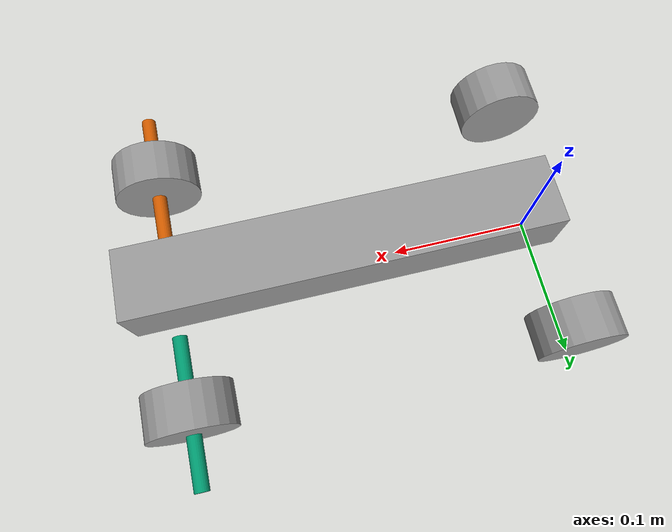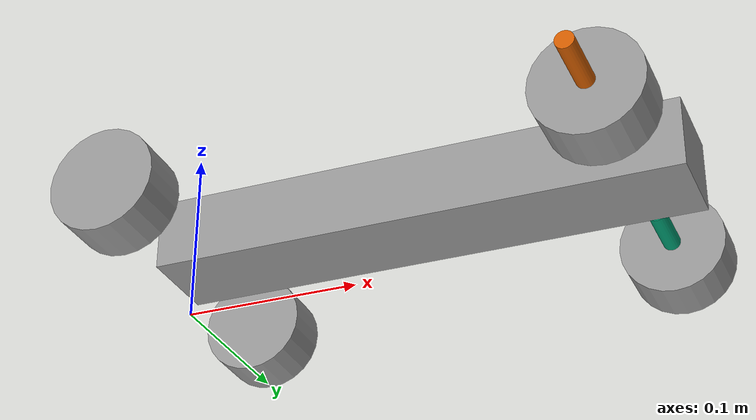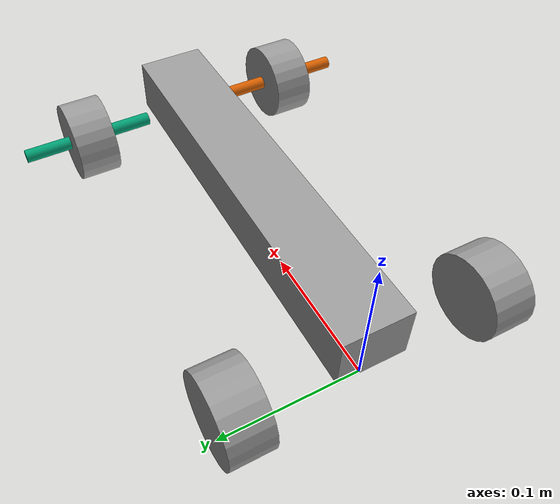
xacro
<?xml version='1.0'?>

<robot name="simcar" xmlns:xacro="http://www.ros.org/wiki/xacro">

    <!-- include vehicle properties -->
    <xacro:include filename="$(find picar_description)/urdf/properties.xacro" />

<!-- Chassis -->
    <link name="chassis">
        <inertial>
            <mass value="${chassisMass}"/>
            <xacro:insert_block name="chassisCenter"/>
            <inertia ixx="${chassisInertiaX}"   ixy="0.0"                   ixz="0.0"
                                                iyy="${chassisInertiaY}"    iyz="0.0"
                                                                            izz="${chassisInertiaZ}"/>
        </inertial>

        <visual>
            <xacro:insert_block name="chassisCenter"/>
            <geometry>
                <box size="${chassisLength} ${chassisWidth} ${chassisHeight}"/>
            </geometry>
        </visual>

        <collision>
            <xacro:insert_block name="chassisCenter"/>
            <geometry>
                <box size="${chassisLength} ${chassisWidth} ${chassisHeight}"/>
            </geometry>
        </collision>
    </link>

    <gazebo reference="chassis">
        <material>Gazebo/Grey</material>
    </gazebo>

<!-- Wheel side macro because of symmetry
    side: {left, right}-->
    <xacro:macro name="wheel_side" params="side">
        <xacro:if value="${side == 'left'}">
            <xacro:property name="sgn" value="1.0"/>
        </xacro:if>
        <xacro:unless value="${side == 'left'}">
            <xacro:property name="sgn" value="-1.0"/>
        </xacro:unless>

        <!-- front wheel -->
        <link name="front_${side}_wheel">
            <inertial>
                <mass value="${wheelMass}"/>
                <origin xyz="0 0 0" rpy="0 0 0"/>
                <inertia ixx="${wheelInertiaX}" ixy="0.0"               ixz="0.0"
                                                iyy="${wheelInertiaY}"  iyz="0.0"
                                                                        izz="${wheelInertiaZ}"/>
            </inertial>

            <visual>
                <!-- rotate cylinder by 90 so it looks like a wheel -->
                <origin xyz="0 0 0" rpy="${PI/2.0} 0 0"/>
                <geometry>
                    <cylinder radius="${wheelRadius}" length="${wheelWidth}"/>
                </geometry>
            </visual>

            <collision>
                <!-- rotate cylinder by 90 so it looks like a wheel -->
                <origin xyz="0 0 0" rpy="${PI/2.0} 0 0"/>
                <geometry>
                    <cylinder radius="${wheelRadius}" length="${wheelWidth}"/>
                </geometry>
            </collision>
        </link>

        <!-- front axle -->
        <link name="front_${side}_axle">
            <inertial>
                <mass value="${wheelMass}"/>
                <origin xyz="0 0 0" rpy="0 0 0"/>
                <inertia ixx="${wheelInertiaX}" ixy="0.0"               ixz="0.0"
                                                iyy="${wheelInertiaY}"  iyz="0.0"
                                                                        izz="${wheelInertiaZ}"/>
            </inertial>

            <visual>
                <origin xyz="0 0 0" rpy="${PI/2.0} 0 0"/>
                <geometry>
                    <cylinder radius="0.005" length="0.1"/>
                </geometry>
            </visual>
        </link>

        <!-- front steer joint -->
        <joint name="front_${side}_steer_joint" type="revolute">
            <parent link="chassis"/>
            <child link="front_${side}_axle"/>
            <origin xyz="${wheelBase} ${sgn*trackGaugeFront/2.0} ${wheelRadius}" rpy="0 0 0"/>
            <axis xyz="0 0 1"/>
            <limit lower="-${maxSteeringAngle}" upper="${maxSteeringAngle}" effort="${steerEffort}" velocity="${steerVelocity}"/>
        </joint>

        <!-- front wheel joint -->
        <joint name="front_${side}_wheel_joint" type="continuous">
            <parent link="front_${side}_axle"/>
            <child link="front_${side}_wheel"/>
            <origin xyz="0 0 0" rpy="0 0 0"/>
            <axis xyz="0 1 0"/>
            <dynamics friction="0.1"/>
            <limit effort="${wheelEffort}" velocity="${wheelVelocity}"/>
        </joint>

        <!-- rear wheel -->
        <link name="rear_${side}_wheel">
            <inertial>
                <mass value="${wheelMass}"/>
                <origin xyz="0 0 0" rpy="0 0 0"/>
                <inertia ixx="${wheelInertiaX}" ixy="0.0"               ixz="0.0"
                                                iyy="${wheelInertiaY}"  iyz="0.0"
                                                                        izz="${wheelInertiaZ}"/>
            </inertial>

            <visual>
                <!-- rotate cylinder by 90 so it looks like a wheel -->
                <origin xyz="0 0 0" rpy="${PI/2.0} 0 0"/>
                <geometry>
                    <cylinder radius="${wheelRadius}" length="${wheelWidth}"/>
                </geometry>
            </visual>

            <collision>
                <!-- rotate cylinder by 90 so it looks like a wheel -->
                <origin xyz="0 0 0" rpy="${PI/2.0} 0 0"/>
                <geometry>
                    <cylinder radius="${wheelRadius}" length="${wheelWidth}"/>
                </geometry>
            </collision>
        </link>

        <!-- rear wheel joint -->
        <joint name="rear_${side}_wheel_joint" type="continuous">
            <parent link="chassis"/>
            <child link="rear_${side}_wheel"/>
            <origin xyz="0 ${sgn*trackGaugeRear/2.0} ${wheelRadius}" rpy="0 0 0"/>
            <axis xyz="0 1 0"/>
            <dynamics friction="0.1"/>
            <limit effort="${wheelEffort}" velocity="${wheelVelocity}"/>
        </joint>

        <gazebo reference="front_${side}_wheel">
            <kp>${wheelKP}</kp>
            <kd>${wheelKD}</kd>
            <mu1>${wheelMU}</mu1>
            <mu2>${wheelMU}</mu2>
            <minDepth>${wheelMinDepth}</minDepth>
            <material>Gazebo/Grey</material>
        </gazebo>

        <gazebo reference="rear_${side}_wheel">
            <kp>${wheelKP}</kp>
            <kd>${wheelKD}</kd>
            <mu1>${wheelMU}</mu1>
            <mu2>${wheelMU}</mu2>
            <minDepth>${wheelMinDepth}</minDepth>
            <material>Gazebo/Grey</material>
        </gazebo>

    </xacro:macro>

    <xacro:wheel_side side="left"/>
    <xacro:wheel_side side="right"/>

    <link name="camera">

    </link>

    <link name="imu">
    </link>

    <joint name="camera_joint" type="fixed">
        <origin xyz="${cameraOffsetX} ${cameraOffsetY} ${cameraOffsetZ}" rpy="0 ${cameraPitch} 0"/>
        <parent link="chassis"/>
        <child link="camera"/>
    </joint>

    <gazebo reference="camera">
        <sensor type="camera" name="camera1">
            <update_rate>30.0</update_rate>
            <camera name="head">
                <horizontal_fov>2.0</horizontal_fov>
                <image>
                    <width>${cameraResWidth}</width>
                    <height>${cameraResHeight}</height>
                    <format>R8G8B8</format>
                </image>
                <noise>
                    <type>gaussian</type>
                    <mean>0.0</mean>
                    <stddev>0.004</stddev>
                </noise>
                <clip>
                    <near>0.01</near>
                    <far>50</far>
                </clip>
            </camera>

            <always_on>true</always_on>
            <visualize>true</visualize>
            <plugin name="camera_controller" filename="libgazebo_ros_camera.so">
                <alwaysOn>true</alwaysOn>
                <updateRate>0</updateRate>
                <cameraName>camera_node</cameraName>
                <imageTopicName>image</imageTopicName>
            </plugin>
        </sensor>
    </gazebo>

    <joint name="imu_joint" type="fixed">
        <origin xyz="${imuOffsetX} ${imuOffsetY} ${imuOffsetZ}" rpy="0 0 0"/>
        <parent link="chassis"/>
        <child link="imu"/>
    </joint>

    <gazebo reference="imu">
        <sensor type="imu" name="imu1">
            <always_on>true</always_on>
            <update_rate>100.0</update_rate>
            <visualize>false</visualize>
            <plugin filename="libgazebo_ros_imu_sensor.so" name="imu_plugin">
                <topicName>imu</topicName>
                <bodyName>imu</bodyName>
                <updateRateHZ>100</updateRateHZ>
                <frameName>imu</frameName>
            </plugin>
        </sensor>
    </gazebo>

    <gazebo>
        <plugin name="picarPlugin" filename="libpicarPlugin.so">
            <front_left_steering_joint>front_left_steer_joint</front_left_steering_joint>
            <front_right_steering_joint>front_right_steer_joint</front_right_steering_joint>
            <front_left_wheel_joint>front_left_wheel_joint</front_left_wheel_joint>
            <front_right_wheel_joint>front_right_wheel_joint</front_right_wheel_joint>
            <rear_left_wheel_joint>rear_left_wheel_joint</rear_left_wheel_joint>
            <rear_right_wheel_joint>rear_right_wheel_joint</rear_right_wheel_joint>

            <front_right_steering_p_gain>1000</front_right_steering_p_gain>
            <front_right_steering_i_gain>0</front_right_steering_i_gain>
            <front_right_steering_d_gain>10</front_right_steering_d_gain>

            <front_left_steering_p_gain>1000</front_left_steering_p_gain>
            <front_left_steering_i_gain>0</front_left_steering_i_gain>
            <front_left_steering_d_gain>10</front_left_steering_d_gain>

            <rear_left_wheel_p_gain>1</rear_left_wheel_p_gain>
            <rear_left_wheel_i_gain>1</rear_left_wheel_i_gain>
            <rear_left_wheel_d_gain>0</rear_left_wheel_d_gain>

            <rear_right_wheel_p_gain>1</rear_right_wheel_p_gain>
            <rear_right_wheel_i_gain>1</rear_right_wheel_i_gain>
            <rear_right_wheel_d_gain>0</rear_right_wheel_d_gain>

            <wheel_torque_limit>1</wheel_torque_limit>

            <wheel_radius>${wheelRadius}</wheel_radius>
            <max_velocity>2.0</max_velocity>
        </plugin>
    </gazebo>
</robot>

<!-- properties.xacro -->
<robot name="simcar" xmlns:xacro="http://www.ros.org/wiki/xacro">
    <!-- Camera Properties-->
    <xacro:property name="cameraSize" value="0.01"/>
    <xacro:property name="cameraMass" value="0.01"/>
    <xacro:property name="cameraOffsetX" value="0.05"/>
    <xacro:property name="cameraOffsetY" value="0.0"/>
    <xacro:property name="cameraOffsetZ" value="0.28"/>
    <xacro:property name="cameraPitch" value="0.34"/>
    <xacro:property name="cameraResWidth" value="640"/>
    <xacro:property name="cameraResHeight" value="480"/>

    <!-- IMU Properties -->
    <xacro:property name="imuSize" value="0.01"/>
    <xacro:property name="imuMass" value="0.01"/>
    <xacro:property name="imuOffsetX" value="0.14"/>
    <xacro:property name="imuOffsetY" value="0.0"/>
    <xacro:property name="imuOffsetZ" value="0.04"/>
    <xacro:property name="imuPitch" value="0.34"/>

    <!-- Constants -->
    <xacro:property name="PI" value="3.1415926535897931"/>

    <!-- Chassis properties -->
    <xacro:property name="chassisHeight" value="0.04"/>
    <xacro:property name="chassisLength" value="0.30"/>
    <xacro:property name="chassisWidth" value="0.05"/>
    <xacro:property name="chassisMass" value="3.00"/>
    <xacro:property name="chassisInertiaX" value="0.03"/>
    <xacro:property name="chassisInertiaY" value="0.03"/>
    <xacro:property name="chassisInertiaZ" value="0.03"/>
    <xacro:property name="chassisOffsetX" value="0.14"/>
    <xacro:property name="chassisOffsetY" value="0.0"/>
    <xacro:property name="chassisOffsetZ" value="0.04"/>
    <xacro:property name="chassisCenter">
        <origin xyz="${chassisOffsetX} ${chassisOffsetY} ${chassisOffsetZ}" rpy="0 0 0"/>
    </xacro:property>

    <!-- Wheel properties -->
    <xacro:property name="wheelWidth" value="0.03"/>
    <xacro:property name="wheelRadius" value="0.03"/>
    <xacro:property name="wheelMass" value="0.100"/>
    <xacro:property name="wheelInertiaX" value="1.0e-3"/>
    <xacro:property name="wheelInertiaY" value="1.0e-3"/>
    <xacro:property name="wheelInertiaZ" value="5.0e-3"/>
    <xacro:property name="wheelBase" value="0.26"/>
    <xacro:property name="trackGaugeFront" value="0.17"/>
    <xacro:property name="trackGaugeRear" value="0.18"/>
    <xacro:property name="wheelKP" value="1.0e6"/>
    <xacro:property name="wheelKD" value="100.0"/>
    <xacro:property name="wheelMU" value="1.0"/>
    <xacro:property name="wheelMinDepth" value="0.00"/>

    <!-- joint limits -->
    <xacro:property name="steerEffort" value="10"/>
    <xacro:property name="steerVelocity" value="1"/>

    <!-- seems to have no effect! -->
    <xacro:property name="wheelEffort" value="100"/>
    <xacro:property name="wheelVelocity" value="100"/>
    <xacro:property name="wheelDamping" value="0.7"/>

    <xacro:property name="maxSteeringAngle" value="${30.0*PI/180.0}"/>
</robot>
